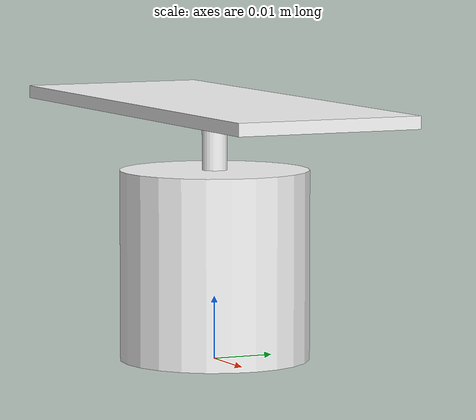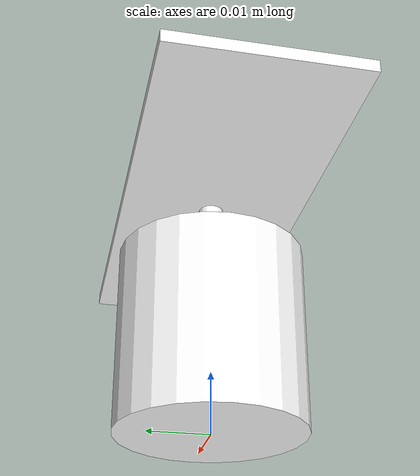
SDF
<?xml version="1.0" ?>
<sdf version="1.5">
  <model name="mrsim-tiltrotor">
    <link name="propeller">
      <inertial>
        <mass>0.01</mass>
        <inertia>
          <ixx>2e-5</ixx><ixy>0</ixy><ixz>0</ixz>
          <iyy>2e-5</iyy><iyz>0</iyz>
          <izz>3.41e-5</izz>
        </inertia>
      </inertial>

      <collision name="collision">
        <pose>0 0 0.04 0 0 0</pose>
        <geometry>
          <cylinder><radius>0.127</radius><length>0.002</length></cylinder>
        </geometry>
      </collision>

      <visual name="motor">
        <pose>0 0 0.015 0 0 0</pose>
        <geometry>
          <cylinder><radius>0.015</radius><length>0.03</length></cylinder>
        </geometry>
        <material>
          <ambient>0.1 0.1 0.1 1</ambient>
          <diffuse>1.0 1.0 1.0 1</diffuse>
        </material>
      </visual>

      <visual name="axle">
        <pose>0 0 0.035 0 0 0</pose>
        <geometry>
          <cylinder><radius>0.002</radius><length>0.01</length></cylinder>
        </geometry>
        <material>
          <ambient>0.1 0.1 0.1 1</ambient>
          <diffuse>1.0 1.0 1.0 1</diffuse>
        </material>
      </visual>

      <visual name="blade">
        <pose>0 0 0.04 0 0 0</pose>
        <geometry>
          <box><size>0.08 0.03 0.002</size></box>
        </geometry>
        <material>
          <ambient>0.1 0.1 0.1 1</ambient>
          <diffuse>1.0 1.0 1.0 1</diffuse>
        </material>
      </visual>
    </link>
  </model>
</sdf>
